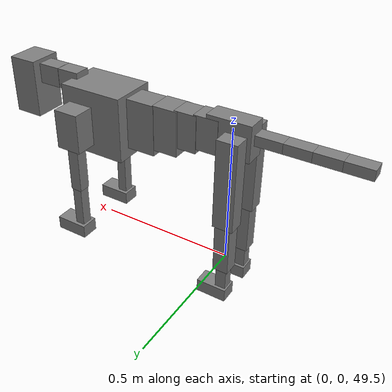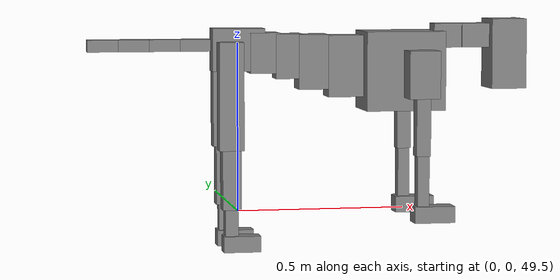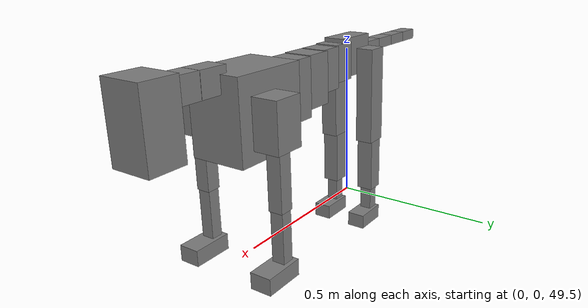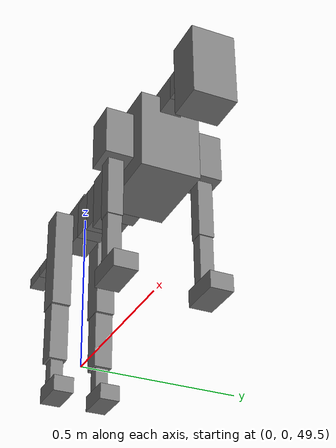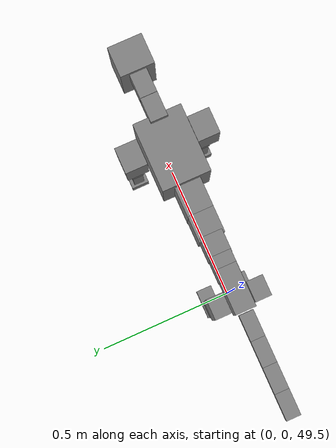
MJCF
<mujoco model="dog">

    <default>
        <joint armature="0.02" stiffness="1" damping="0.2" limited="true"/>
        <geom condim="3" friction="1 0.05 0.05" margin="0.01"/>
        <motor ctrllimited="true" ctrlrange="-1.0 1.0" forcelimited="true" gear="50"/>
    </default>

    <compiler inertiafromgeom="true" angle="radian"/>

    <option timestep="0.016" iterations="50" tolerance="1e-10" solver="Newton" jacobian="dense" cone="pyramidal"/>

    <size nconmax="20000" njmax="60000" nstack="5000000"/>
    <visual>
        <map force="0.1" zfar="30"/>
        <rgba haze="0.15 0.25 0.35 1"/>
        <quality shadowsize="2048"/>
        <global offwidth="800" offheight="800"/>
    </visual>

    <asset>
        <texture type="skybox" builtin="gradient" rgb1="0.3 0.5 0.7" rgb2="0 0 0" width="512" height="512"/>
        <texture name="texplane" type="2d" builtin="checker" rgb1=".2 .3 .4" rgb2=".1 0.15 0.2" width="512" height="512"
                 mark="cross" markrgb=".8 .8 .8"/>
        <texture name="texgeom" type="cube" builtin="flat" mark="cross" width="127" height="1278" rgb1="0.8 0.6 0.4"
                 rgb2="0.8 0.6 0.4" markrgb="1 1 1" random="0.01"/>

        <material name="matplane" reflectance="0.3" texture="texplane" texrepeat="1 1" texuniform="true"/>
        <material name="matgeom" texture="texgeom" texuniform="true" rgba="0.8 0.6 .4 1"/>
    </asset>

    <worldbody>
        <geom name="floor" pos="0 0 0" size="0 0 .25" type="plane" material="matplane" condim="3"/>

        <light directional="false" diffuse=".2 .2 .2" specular="0 0 0" pos="0 0 5" dir="0 0 -1" castshadow="false"/>
        <light mode="targetbodycom" target="torso" directional="false" diffuse=".8 .8 .8" specular="0.3 0.3 0.3"
               pos="0 0 4.0" dir="0 0 -1"/>

        <body name="root" pos="0 0 50">
            <freejoint name="root_1"/>
            <geom type="box" pos="0 0 -0.02" size="0.0774  0.0358  0.063" density="2030"/>

            <body name="spine1" pos="0.054 0 0">
                <joint name="spine1_y" axis="0 1 0" range="0 0.7" limited="true"/>
                <geom type="box" pos="0.02375 0 -0.03" size="0.04375  0.0375  0.05985" density="2030"/>

                <body name="spine2" pos="0.0612 0 0">
                    <joint name="spine2_y" axis="0 1 0" range="-0.15 0.15" limited="true"/>
                    <geom type="box" pos="0.03555  0  -0.04" size="0.04055  0.039  0.06615" density="2030"/>

                    <body name="spine3" pos="0.0730 0 0">
                        <joint name="spine3_y" axis="0 1 0" range="-0.15 0.15" limited="true"/>
                        <geom type="box" pos="0.03555  0  -0.057" size="0.04555  0.0445  0.081" density="2030"/>

                        <body name="spine4" pos="0.0780 0 0">
                            <joint name="spine4_y" axis="0 1 0" range="-0.15 0.15" limited="true"/>
                            <geom type="box" pos="0.05265  0  -0.07" size="0.05265  0.045  0.09135" density="2030"/>

                            <body name="torso" pos="0.1082 0 0">
                                <joint name="torso_y" axis="0 1 0" range="-0.15 0.15" limited="true"/>
                                <geom type="box" pos="0.11925  0  -0.085" size="0.11925  0.085  0.11745"
                                      density="2030"/>

                                <body name="neck1" pos="0.2160  0   0.0180">
                                    <joint name="neck1_y" axis="0 1 0" range="-1.2  -1" limited="true"/>
                                    <geom type="box" pos="0.0423  0  0" size="0.0423  0.03  0.036" density="2325"/>

                                    <body name="neck2" pos="0.0853  0  0">
                                        <joint name="neck2_y" axis="0 1 0" range="0.1  0" limited="true"/>
                                        <geom type="box" pos="0.0423  0  0" size="0.0423  0.03  0.036" density="2325"/>

                                        <body name="head" pos="0.0853  0  0">
                                            <joint name="head_y" axis="0 1 0" range="-0.3  -0.2" limited="true"/>
                                            <geom type="box" pos="0.0531  0  -0.055" size="0.0531  0.06  0.1044"
                                                  density="4030"/>

                                        </body>
                                    </body>
                                </body>

                                <body name="front_shoulder" pos="0.156  0   -0.0480">
                                    <joint name="front_shoulder_y" axis="0 1 0" range="-1 1.5" limited="true"/>
                                    <geom type="box" pos="0 0.13 -0.0438" size="0.0459  0.0392  0.0704" density="1158"/>
                                    <geom type="box" pos="0 -0.13 -0.0438" size="0.0459  0.0392  0.0704"
                                          density="1158"/>

                                    <body name="front_elbow" pos="0  0  -0.0875">
                                        <joint name="front_elbow_y" axis="0 1 0" range="-2 0" limited="true"/>
                                        <geom type="box" pos="0 0.13 -0.0983" size="0.0212  0.0216  0.0983"
                                              density="1081"/>
                                        <geom type="box" pos="0 -0.13 -0.0983" size="0.0212  0.0216  0.0983"
                                              density="1081"/>

                                        <body name="front_wrist" pos="0  0  -0.1966">
                                            <joint name="front_wrist_y" axis="0 1 0" range="-0.2 0" limited="true"/>
                                            <geom type="box" pos="0 0.13 -0.0815" size="0.0178  0.0197  0.0947"
                                                  density="1664"/>
                                            <geom type="box" pos="0 -0.13 -0.0815" size="0.0178  0.0197  0.0947"
                                                  density="1664"/>

                                            <body name="front_finger_end" pos="0  0  -0.1630">
                                                <joint name="front_finger_y" axis="0 1 0" range="-0.4 1"
                                                       limited="true"/>
                                                <geom type="box" pos="0.0327  0.13  -0.0094"
                                                      size="0.0600  0.0327  0.0244" density="1515"/>
                                                <geom type="box" pos="0.0327  -0.13  -0.0094"
                                                      size="0.0600  0.0327  0.0244" density="1515"/>

                                            </body>

                                        </body>
                                    </body>
                                </body>

                            </body>
                        </body>
                    </body>
                </body>
            </body>

            <body name="back_hip" pos="-0.03 0 -0.018">
                <joint name="back_hip_y" axis="0 1 0" range="-1.5 0.3" limited="true"/>
                <geom type="box" pos="0 0.07 -0.1354" size="0.0363  0.0285  0.1582" density="1154"/>
                <geom type="box" pos="0 -0.07 -0.1354" size="0.0363  0.0285  0.1582" density="1154"/>

                <body name="back_knee" pos="0  0  -0.2709">
                    <joint name="back_knee_y" axis="0 1 0" range="0 2.8" limited="true"/>
                    <geom type="box" pos="0 0.07 -0.0907" size="0.0275  0.0271  0.1062" density="1227"/>
                    <geom type="box" pos="0 -0.07 -0.0907" size="0.0275  0.0271  0.1062" density="1227"/>

                    <body name="back_ankle" pos="0  0  -0.1814">
                        <joint name="back_ankle_y" axis="0 1 0" range="-2.2 0" limited="true"/>
                        <geom type="box" pos="0 0.07 -0.0539" size="0.0190  0.0190  0.0651" density="1284"/>
                        <geom type="box" pos="0 -0.07 -0.0539" size="0.0190  0.0190  0.0651" density="1284"/>

                        <body name="back_toe_end" pos="0  0  -0.1078">
                            <joint name="back_toe_y" axis="0 1 0" range="-0.4 1" limited="true"/>
                            <geom type="box" pos="0.0297  0.07  -0.0086" size="0.0544  0.0297  0.0236" density="1515"/>
                            <geom type="box" pos="0.0297  -0.07  -0.0086" size="0.0544  0.0297  0.0236" density="1515"/>

                        </body>
                    </body>
                </body>
            </body>

            <body name="tail1" pos="-0.074 0 -0.006">
                <joint name="tail1_y" axis="0 1 0" range="-0.2 0.2" limited="true"/>
                <geom type="box" pos="-0.0536  0  0" size="0.045  0.025  0.0175" density="1587"/>

                <body name="tail2" pos="-0.09 0 0">
                    <joint name="tail2_y" axis="0 1 0" range="-0.2 0.2" limited="true"/>
                    <geom type="box" pos="-0.0536  0  0" size="0.045  0.025  0.0175" density="1587"/>

                    <body name="tail3" pos="-0.09 0 0">
                        <joint name="tail3_y" axis="0 1 0" range="-0.2 0.2" limited="true"/>
                        <geom type="box" pos="-0.0536  0  0" size="0.045  0.025  0.0175" density="1587"/>

                        <body name="tail4" pos="-0.09 0 0">
                            <joint name="tail4_y" axis="0 1 0" range="-0.2 0.2" limited="true"/>
                            <geom type="box" pos="-0.0536  0  0" size="0.045  0.025  0.0175" density="1587"/>

                        </body>
                    </body>
                </body>
            </body>
        </body>
    </worldbody>

    <actuator>
        <motor joint="spine1_y" forcerange="-150 150     "/>
        <motor joint="spine2_y" forcerange="-150 150     "/>
        <motor joint="spine3_y" forcerange="-150 150     "/>
        <motor joint="spine4_y" forcerange="-150 150     "/>
        <motor joint="torso_y" forcerange="-150 150     "/>
        <motor joint="neck1_y" forcerange="-100 100       "/>
        <motor joint="neck2_y" forcerange="-100 100       "/>
        <motor joint="head_y" forcerange="-150 150       "/>
        <motor joint="front_shoulder_y" forcerange="-189.16 172.27"/>
        <motor joint="front_elbow_y" forcerange="-114.50 142.92"/>
        <motor joint="front_wrist_y" forcerange="-99.41 58.41"/>
        <motor joint="front_finger_y" forcerange="-73.32 61.23"/>
        <motor joint="back_hip_y" forcerange="-244.12 335.47"/>
        <motor joint="back_knee_y" forcerange="-348.28 245.69"/>
        <motor joint="back_angle_y" forcerange="-66.95 137.41"/>
        <motor joint="back_toe_y" forcerange="-137.30 20.21"/>
        <motor joint="tail1_y" forcerange="-50 50     "/>
        <motor joint="tail2_y" forcerange="-50 50     "/>
        <motor joint="tail3_y" forcerange="-50 50     "/>
        <motor joint="tail4_y" forcerange="-50 50     "/>
    </actuator>
</mujoco>
